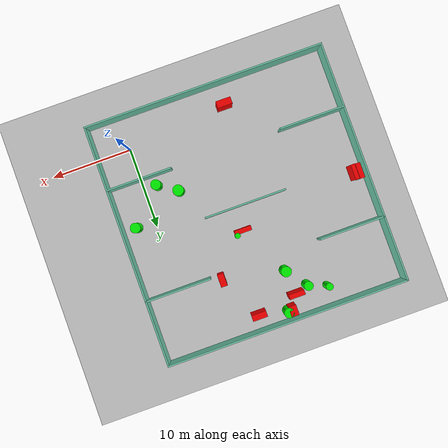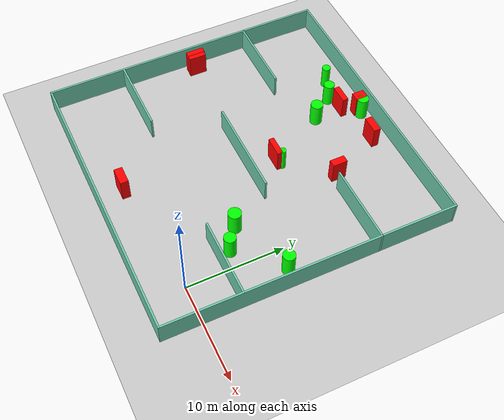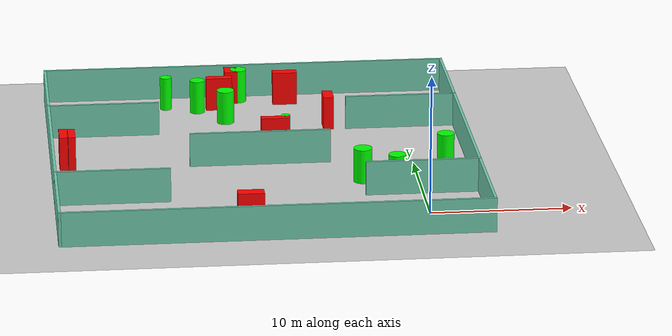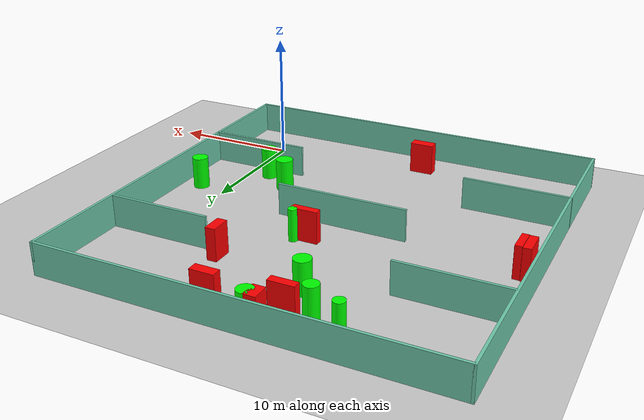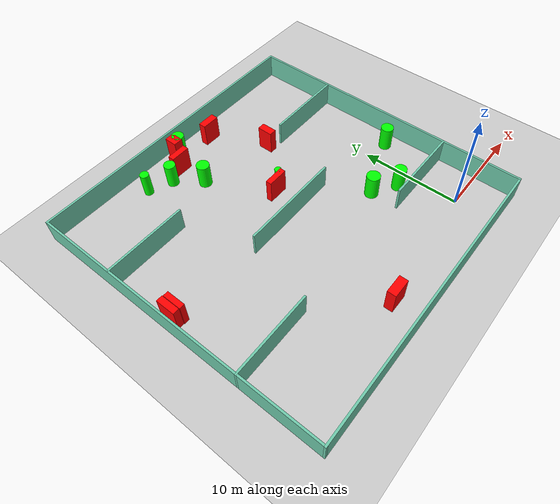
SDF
<sdf version="1.7">
 <world name="default">
  <light name="sun" type="directional">
   <pose>0 0 10 0 -0 0</pose>
   <diffuse>0.8 0.8 0.8 1</diffuse>
   <specular>0.2 0.2 0.2 1</specular>
   <attenuation>
    <range>1000</range>
    <constant>0.9</constant>
    <linear>0.01</linear>
    <quadratic>0.001</quadratic>
   </attenuation>
   <direction>-0.5 0.1 -0.9</direction>
   <spot><inner_angle>0</inner_angle><outer_angle>0</outer_angle><falloff>0</falloff></spot>
  </light>
  <model name="ground_plane">
   <static>1</static>
   <link name="link">
    <collision name="collision">
     <geometry><plane><normal>0 0 1</normal><size>100 100</size></plane></geometry>
     <surface>
      <contact><collide_bitmask>65535</collide_bitmask></contact>
      <friction><ode><mu>100</mu><mu2>50</mu2></ode></friction>
     </surface>
    </collision>
    <visual name="visual">
     <cast_shadows>0</cast_shadows>
     <geometry><plane><normal>0 0 1</normal><size>100 100</size></plane></geometry>
     <material>
      <script><uri>file://media/materials/scripts/gazebo.material</uri><name>Gazebo/Grey</name></script>
     </material>
    </visual>
   </link>
  </model>
  <gravity>0 0 -9.8</gravity>
  <magnetic_field>6e-06 2.3e-05 -4.2e-05</magnetic_field>
  <atmosphere type="adiabatic"/>
  <physics type="ode">
   <max_step_size>0.001</max_step_size>
   <real_time_factor>1</real_time_factor>
   <real_time_update_rate>1000</real_time_update_rate>
  </physics>
  <scene><ambient>0.4 0.4 0.4 1</ambient><background>0.7 0.7 0.7 1</background><shadows>1</shadows></scene>
  <spherical_coordinates>
   <surface_model>EARTH_WGS84</surface_model>
   <latitude_deg>0</latitude_deg>
   <longitude_deg>0</longitude_deg>
   <elevation>0</elevation>
   <heading_deg>0</heading_deg>
  </spherical_coordinates>
  <model name="my_base_walls">
   <link name="Wall_10">
    <collision name="Wall_10_Collision">
     <geometry><box><size>8.2 0.2 2.5</size></box></geometry>
     <pose>0 0 1.25 0 -0 0</pose>
    </collision>
    <visual name="Wall_10_Visual">
     <pose>0 0 1.25 0 -0 0</pose>
     <geometry><box><size>8.2 0.2 2.5</size></box></geometry>
     <material>
      <script><uri>file://media/materials/scripts/gazebo.material</uri><name>Gazebo/Grey</name></script>
      <ambient>0.435294 0.796078 0.67451 1</ambient>
     </material>
     <meta><layer>0</layer></meta>
    </visual>
    <pose>-11 -7 0 0 -0 0</pose>
   </link>
   <link name="Wall_12">
    <collision name="Wall_12_Collision">
     <geometry><box><size>8.2 0.2 2.5</size></box></geometry>
     <pose>0 0 1.25 0 -0 0</pose>
    </collision>
    <visual name="Wall_12_Visual">
     <pose>0 0 1.25 0 -0 0</pose>
     <geometry><box><size>8.2 0.2 2.5</size></box></geometry>
     <material>
      <script><uri>file://media/materials/scripts/gazebo.material</uri><name>Gazebo/Grey</name></script>
      <ambient>0.435294 0.796078 0.67451 1</ambient>
     </material>
     <meta><layer>0</layer></meta>
    </visual>
    <pose>-11 7 0 0 -0 0</pose>
   </link>
   <link name="Wall_14">
    <collision name="Wall_14_Collision">
     <geometry><box><size>8.2 0.2 2.5</size></box></geometry>
     <pose>0 0 1.25 0 -0 0</pose>
    </collision>
    <visual name="Wall_14_Visual">
     <pose>0 0 1.25 0 -0 0</pose>
     <geometry><box><size>8.2 0.2 2.5</size></box></geometry>
     <material>
      <script><uri>file://media/materials/scripts/gazebo.material</uri><name>Gazebo/Grey</name></script>
      <ambient>0.435294 0.796078 0.67451 1</ambient>
     </material>
     <meta><layer>0</layer></meta>
    </visual>
    <pose>11 7 0 0 -0 3.14159</pose>
   </link>
   <link name="Wall_16">
    <collision name="Wall_16_Collision">
     <geometry><box><size>10.2 0.2 2.5</size></box></geometry>
     <pose>0 0 1.25 0 -0 0</pose>
    </collision>
    <visual name="Wall_16_Visual">
     <pose>0 0 1.25 0 -0 0</pose>
     <geometry><box><size>10.2 0.2 2.5</size></box></geometry>
     <material>
      <script><uri>file://media/materials/scripts/gazebo.material</uri><name>Gazebo/Grey</name></script>
      <ambient>0.435294 0.796078 0.67451 1</ambient>
     </material>
     <meta><layer>0</layer></meta>
    </visual>
    <pose>0 0 0 0 -0 3.14159</pose>
   </link>
   <link name="Wall_2">
    <collision name="Wall_2_Collision">
     <geometry><box><size>30.2 0.2 2.5</size></box></geometry>
     <pose>0 0 1.25 0 -0 0</pose>
    </collision>
    <visual name="Wall_2_Visual">
     <pose>0 0 1.25 0 -0 0</pose>
     <geometry><box><size>30.2 0.2 2.5</size></box></geometry>
     <material>
      <script><uri>file://media/materials/scripts/gazebo.material</uri><name>Gazebo/Grey</name></script>
      <ambient>0.435294 0.796078 0.67451 1</ambient>
     </material>
     <meta><layer>0</layer></meta>
    </visual>
    <pose>0 -15 0 0 -0 3.14159</pose>
   </link>
   <link name="Wall_3">
    <collision name="Wall_3_Collision">
     <geometry><box><size>30.2 0.2 2.5</size></box></geometry>
     <pose>0 0 1.25 0 -0 0</pose>
    </collision>
    <visual name="Wall_3_Visual">
     <pose>0 0 1.25 0 -0 0</pose>
     <geometry><box><size>30.2 0.2 2.5</size></box></geometry>
     <material>
      <script><uri>file://media/materials/scripts/gazebo.material</uri><name>Gazebo/Grey</name></script>
      <ambient>0.435294 0.796078 0.67451 1</ambient>
     </material>
     <meta><layer>0</layer></meta>
    </visual>
    <pose>-15 0 0 0 -0 1.5708</pose>
   </link>
   <link name="Wall_4">
    <collision name="Wall_4_Collision">
     <geometry><box><size>30.2 0.2 2.5</size></box></geometry>
     <pose>0 0 1.25 0 -0 0</pose>
    </collision>
    <visual name="Wall_4_Visual">
     <pose>0 0 1.25 0 -0 0</pose>
     <geometry><box><size>30.2 0.2 2.5</size></box></geometry>
     <material>
      <script><uri>file://media/materials/scripts/gazebo.material</uri><name>Gazebo/Grey</name></script>
      <ambient>0.435294 0.796078 0.67451 1</ambient>
     </material>
     <meta><layer>0</layer></meta>
    </visual>
    <pose>0 15 0 0 -0 0</pose>
   </link>
   <link name="Wall_6">
    <collision name="Wall_6_Collision">
     <geometry><box><size>30.2 0.2 2.5</size></box></geometry>
     <pose>0 0 1.25 0 -0 0</pose>
    </collision>
    <visual name="Wall_6_Visual">
     <pose>0 0 1.25 0 -0 0</pose>
     <geometry><box><size>30.2 0.2 2.5</size></box></geometry>
     <material>
      <script><uri>file://media/materials/scripts/gazebo.material</uri><name>Gazebo/Grey</name></script>
      <ambient>0.435294 0.796078 0.67451 1</ambient>
     </material>
     <meta><layer>0</layer></meta>
    </visual>
    <pose>15 0 0 0 -0 1.5708</pose>
   </link>
   <link name="Wall_8">
    <collision name="Wall_8_Collision">
     <geometry><box><size>8.2 0.2 2.5</size></box></geometry>
     <pose>0 0 1.25 0 -0 0</pose>
    </collision>
    <visual name="Wall_8_Visual">
     <pose>0 0 1.25 0 -0 0</pose>
     <geometry><box><size>8.2 0.2 2.5</size></box></geometry>
     <material>
      <script><uri>file://media/materials/scripts/gazebo.material</uri><name>Gazebo/Grey</name></script>
      <ambient>0.435294 0.796078 0.67451 1</ambient>
     </material>
     <meta><layer>0</layer></meta>
    </visual>
    <pose>11 -7 0 0 -0 3.14159</pose>
   </link>
   <static>1</static>
   <pose>-11 11 0 0 -0 0</pose>
  </model>
  <model name="cylinder1">
   <static>1</static>
   <link name="link">
    <inertial>
     <mass>1</mass>
     <inertia><ixx>0.5</ixx><ixy>0</ixy><ixz>0</ixz><iyy>0.5</iyy><iyz>0</iyz><izz>1</izz></inertia>
    </inertial>
    <collision name="collision">
     <geometry><cylinder><radius>0.556122124614155</radius><length>2.5</length></cylinder></geometry>
    </collision>
    <visual name="visual">
     <geometry><cylinder><radius>0.556122124614155</radius><length>2.5</length></cylinder></geometry>
     <material>
      <ambient>0 1 0 1</ambient>
      <diffuse>0 1 0 1</diffuse>
      <specular>0.1 0.1 0.1 1</specular>
      <emissive>0 0 0 0</emissive>
     </material>
    </visual>
   </link>
   <pose>-14.742783288029546 22.694048549079113 1.25 0 0 0</pose>
  </model>
  <model name="cylinder2">
   <static>1</static>
   <link name="link">
    <inertial>
     <mass>1</mass>
     <inertia><ixx>0.5</ixx><ixy>0</ixy><ixz>0</ixz><iyy>0.5</iyy><iyz>0</iyz><izz>1</izz></inertia>
    </inertial>
    <collision name="collision">
     <geometry><cylinder><radius>0.6703374828728006</radius><length>2.5</length></cylinder></geometry>
    </collision>
    <visual name="visual">
     <geometry><cylinder><radius>0.6703374828728006</radius><length>2.5</length></cylinder></geometry>
     <material>
      <ambient>0 1 0 1</ambient>
      <diffuse>0 1 0 1</diffuse>
      <specular>0.1 0.1 0.1 1</specular>
      <emissive>0 0 0 0</emissive>
     </material>
    </visual>
   </link>
   <pose>-4.007905451873974 6.815473270482087 1.25 0 0 0</pose>
  </model>
  <model name="cylinder3">
   <static>1</static>
   <link name="link">
    <inertial>
     <mass>1</mass>
     <inertia><ixx>0.5</ixx><ixy>0</ixy><ixz>0</ixz><iyy>0.5</iyy><iyz>0</iyz><izz>1</izz></inertia>
    </inertial>
    <collision name="collision">
     <geometry><cylinder><radius>0.33765850103781386</radius><length>2.5</length></cylinder></geometry>
    </collision>
    <visual name="visual">
     <geometry><cylinder><radius>0.33765850103781386</radius><length>2.5</length></cylinder></geometry>
     <material>
      <ambient>0 1 0 1</ambient>
      <diffuse>0 1 0 1</diffuse>
      <specular>0.1 0.1 0.1 1</specular>
      <emissive>0 0 0 0</emissive>
     </material>
    </visual>
   </link>
   <pose>-8.857349576843216 14.297837706328394 1.25 0 0 0</pose>
  </model>
  <model name="cylinder4">
   <static>1</static>
   <link name="link">
    <inertial>
     <mass>1</mass>
     <inertia><ixx>0.5</ixx><ixy>0</ixy><ixz>0</ixz><iyy>0.5</iyy><iyz>0</iyz><izz>1</izz></inertia>
    </inertial>
    <collision name="collision">
     <geometry><cylinder><radius>0.6119587763083241</radius><length>2.5</length></cylinder></geometry>
    </collision>
    <visual name="visual">
     <geometry><cylinder><radius>0.6119587763083241</radius><length>2.5</length></cylinder></geometry>
     <material>
      <ambient>0 1 0 1</ambient>
      <diffuse>0 1 0 1</diffuse>
      <specular>0.1 0.1 0.1 1</specular>
      <emissive>0 0 0 0</emissive>
     </material>
    </visual>
   </link>
   <pose>-1.7225922360912413 5.29307022920827 1.25 0 0 0</pose>
  </model>
  <model name="cylinder5">
   <static>1</static>
   <link name="link">
    <inertial>
     <mass>1</mass>
     <inertia><ixx>0.5</ixx><ixy>0</ixy><ixz>0</ixz><iyy>0.5</iyy><iyz>0</iyz><izz>1</izz></inertia>
    </inertial>
    <collision name="collision">
     <geometry><cylinder><radius>0.6007415918461918</radius><length>2.5</length></cylinder></geometry>
    </collision>
    <visual name="visual">
     <geometry><cylinder><radius>0.6007415918461918</radius><length>2.5</length></cylinder></geometry>
     <material>
      <ambient>0 1 0 1</ambient>
      <diffuse>0 1 0 1</diffuse>
      <specular>0.1 0.1 0.1 1</specular>
      <emissive>0 0 0 0</emissive>
     </material>
    </visual>
   </link>
   <pose>-11.517628947219062 24.920722663840294 1.25 0 0 0</pose>
  </model>
  <model name="cylinder6">
   <static>1</static>
   <link name="link">
    <inertial>
     <mass>1</mass>
     <inertia><ixx>0.5</ixx><ixy>0</ixy><ixz>0</ixz><iyy>0.5</iyy><iyz>0</iyz><izz>1</izz></inertia>
    </inertial>
    <collision name="collision">
     <geometry><cylinder><radius>0.6391881609787226</radius><length>2.5</length></cylinder></geometry>
    </collision>
    <visual name="visual">
     <geometry><cylinder><radius>0.6391881609787226</radius><length>2.5</length></cylinder></geometry>
     <material>
      <ambient>0 1 0 1</ambient>
      <diffuse>0 1 0 1</diffuse>
      <specular>0.1 0.1 0.1 1</specular>
      <emissive>0 0 0 0</emissive>
     </material>
    </visual>
   </link>
   <pose>-12.815945903023092 20.216579862999197 1.25 0 0 0</pose>
  </model>
  <model name="cylinder7">
   <static>1</static>
   <link name="link">
    <inertial>
     <mass>1</mass>
     <inertia><ixx>0.5</ixx><ixy>0</ixy><ixz>0</ixz><iyy>0.5</iyy><iyz>0</iyz><izz>1</izz></inertia>
    </inertial>
    <collision name="collision">
     <geometry><cylinder><radius>0.43534264379098775</radius><length>2.5</length></cylinder></geometry>
    </collision>
    <visual name="visual">
     <geometry><cylinder><radius>0.43534264379098775</radius><length>2.5</length></cylinder></geometry>
     <material>
      <ambient>0 1 0 1</ambient>
      <diffuse>0 1 0 1</diffuse>
      <specular>0.1 0.1 0.1 1</specular>
      <emissive>0 0 0 0</emissive>
     </material>
    </visual>
   </link>
   <pose>-17.04880219656082 23.611544801081347 1.25 0 0 0</pose>
  </model>
  <model name="cylinder8">
   <static>1</static>
   <link name="link">
    <inertial>
     <mass>1</mass>
     <inertia><ixx>0.5</ixx><ixy>0</ixy><ixz>0</ixz><iyy>0.5</iyy><iyz>0</iyz><izz>1</izz></inertia>
    </inertial>
    <collision name="collision">
     <geometry><cylinder><radius>0.6206087163455815</radius><length>2.5</length></cylinder></geometry>
    </collision>
    <visual name="visual">
     <geometry><cylinder><radius>0.6206087163455815</radius><length>2.5</length></cylinder></geometry>
     <material>
      <ambient>0 1 0 1</ambient>
      <diffuse>0 1 0 1</diffuse>
      <specular>0.1 0.1 0.1 1</specular>
      <emissive>0 0 0 0</emissive>
     </material>
    </visual>
   </link>
   <pose>2.2695303223295618 9.336822435333046 1.25 0 0 0</pose>
  </model>
  <model name="box1">
   <static>1</static>
   <link name="link">
    <inertial>
     <mass>1</mass>
     <inertia><ixx>0.083</ixx><ixy>0</ixy><ixz>0</ixz><iyy>0.083</iyy><iyz>0</iyz><izz>0.083</izz></inertia>
    </inertial>
    <collision name="collision">
     <geometry><box><size>0.6058887339972637 1.8960172157842572 2.5</size></box></geometry>
    </collision>
    <visual name="visual">
     <geometry><box><size>0.6058887339972637 1.8960172157842572 2.5</size></box></geometry>
     <material>
      <ambient>1 0 0 1</ambient>
      <diffuse>1 0 0 1</diffuse>
      <specular>0.1 0.1 0.1 1</specular>
      <emissive>0 0 0 0</emissive>
     </material>
    </visual>
    <sensor name="my_contact" type="contact">
     <contact><collision>box_collision</collision><topic>__default_topic__</topic></contact>
    </sensor>
   </link>
   <pose>-25.154974816612977 11.89559091767302 1.25 0 0 0</pose>
  </model>
  <model name="box2">
   <static>1</static>
   <link name="link">
    <inertial>
     <mass>1</mass>
     <inertia><ixx>0.083</ixx><ixy>0</ixy><ixz>0</ixz><iyy>0.083</iyy><iyz>0</iyz><izz>0.083</izz></inertia>
    </inertial>
    <collision name="collision">
     <geometry><box><size>0.5214342772216674 1.8628220299374019 2.5</size></box></geometry>
    </collision>
    <visual name="visual">
     <geometry><box><size>0.5214342772216674 1.8628220299374019 2.5</size></box></geometry>
     <material>
      <ambient>1 0 0 1</ambient>
      <diffuse>1 0 0 1</diffuse>
      <specular>0.1 0.1 0.1 1</specular>
      <emissive>0 0 0 0</emissive>
     </material>
    </visual>
    <sensor name="my_contact" type="contact">
     <contact><collision>box_collision</collision><topic>__default_topic__</topic></contact>
    </sensor>
   </link>
   <pose>-24.562386060245483 11.834784637926994 1.25 0 0 0</pose>
  </model>
  <model name="box3">
   <static>1</static>
   <link name="link">
    <inertial>
     <mass>1</mass>
     <inertia><ixx>0.083</ixx><ixy>0</ixy><ixz>0</ixz><iyy>0.083</iyy><iyz>0</iyz><izz>0.083</izz></inertia>
    </inertial>
    <collision name="collision">
     <geometry><box><size>1.9397953673509214 0.6166513461832762 2.5</size></box></geometry>
    </collision>
    <visual name="visual">
     <geometry><box><size>1.9397953673509214 0.6166513461832762 2.5</size></box></geometry>
     <material>
      <ambient>1 0 0 1</ambient>
      <diffuse>1 0 0 1</diffuse>
      <specular>0.1 0.1 0.1 1</specular>
      <emissive>0 0 0 0</emissive>
     </material>
    </visual>
    <sensor name="my_contact" type="contact">
     <contact><collision>box_collision</collision><topic>__default_topic__</topic></contact>
    </sensor>
   </link>
   <pose>-13.095454237509768 23.187284152642505 1.25 0 0 0</pose>
  </model>
  <model name="box4">
   <static>1</static>
   <link name="link">
    <inertial>
     <mass>1</mass>
     <inertia><ixx>0.083</ixx><ixy>0</ixy><ixz>0</ixz><iyy>0.083</iyy><iyz>0</iyz><izz>0.083</izz></inertia>
    </inertial>
    <collision name="collision">
     <geometry><box><size>2.0765070698249417 0.5706125237657418 2.5</size></box></geometry>
    </collision>
    <visual name="visual">
     <geometry><box><size>2.0765070698249417 0.5706125237657418 2.5</size></box></geometry>
     <material>
      <ambient>1 0 0 1</ambient>
      <diffuse>1 0 0 1</diffuse>
      <specular>0.1 0.1 0.1 1</specular>
      <emissive>0 0 0 0</emissive>
     </material>
    </visual>
    <sensor name="my_contact" type="contact">
     <contact><collision>box_collision</collision><topic>__default_topic__</topic></contact>
    </sensor>
   </link>
   <pose>-9.652457231849912 13.905499281050655 1.25 0 0 0</pose>
  </model>
  <model name="box5">
   <static>1</static>
   <link name="link">
    <inertial>
     <mass>1</mass>
     <inertia><ixx>0.083</ixx><ixy>0</ixy><ixz>0</ixz><iyy>0.083</iyy><iyz>0</iyz><izz>0.083</izz></inertia>
    </inertial>
    <collision name="collision">
     <geometry><box><size>1.8142795359024744 0.7344802194313255 2.5</size></box></geometry>
    </collision>
    <visual name="visual">
     <geometry><box><size>1.8142795359024744 0.7344802194313255 2.5</size></box></geometry>
     <material>
      <ambient>1 0 0 1</ambient>
      <diffuse>1 0 0 1</diffuse>
      <specular>0.1 0.1 0.1 1</specular>
      <emissive>0 0 0 0</emissive>
     </material>
    </visual>
    <sensor name="my_contact" type="contact">
     <contact><collision>box_collision</collision><topic>__default_topic__</topic></contact>
    </sensor>
   </link>
   <pose>-8.077178060771377 24.0678094583393 1.25 0 0 0</pose>
  </model>
  <model name="box6">
   <static>1</static>
   <link name="link">
    <inertial>
     <mass>1</mass>
     <inertia><ixx>0.083</ixx><ixy>0</ixy><ixz>0</ixz><iyy>0.083</iyy><iyz>0</iyz><izz>0.083</izz></inertia>
    </inertial>
    <collision name="collision">
     <geometry><box><size>1.864234952234092 0.8510719047700958 2.5</size></box></geometry>
    </collision>
    <visual name="visual">
     <geometry><box><size>1.864234952234092 0.8510719047700958 2.5</size></box></geometry>
     <material>
      <ambient>1 0 0 1</ambient>
      <diffuse>1 0 0 1</diffuse>
      <specular>0.1 0.1 0.1 1</specular>
      <emissive>0 0 0 0</emissive>
     </material>
    </visual>
    <sensor name="my_contact" type="contact">
     <contact><collision>box_collision</collision><topic>__default_topic__</topic></contact>
    </sensor>
   </link>
   <pose>-12.67163215172901 -1.2209265782748315 1.25 0 0 0</pose>
  </model>
  <model name="box7">
   <static>1</static>
   <link name="link">
    <inertial>
     <mass>1</mass>
     <inertia><ixx>0.083</ixx><ixy>0</ixy><ixz>0</ixz><iyy>0.083</iyy><iyz>0</iyz><izz>0.083</izz></inertia>
    </inertial>
    <collision name="collision">
     <geometry><box><size>0.9461690029885153 1.262536894604109 2.5</size></box></geometry>
    </collision>
    <visual name="visual">
     <geometry><box><size>0.9461690029885153 1.262536894604109 2.5</size></box></geometry>
     <material>
      <ambient>1 0 0 1</ambient>
      <diffuse>1 0 0 1</diffuse>
      <specular>0.1 0.1 0.1 1</specular>
      <emissive>0 0 0 0</emissive>
     </material>
    </visual>
    <sensor name="my_contact" type="contact">
     <contact><collision>box_collision</collision><topic>__default_topic__</topic></contact>
    </sensor>
   </link>
   <pose>-12.091081102964525 24.85696959557285 1.25 0 0 0</pose>
  </model>
  <model name="box8">
   <static>1</static>
   <link name="link">
    <inertial>
     <mass>1</mass>
     <inertia><ixx>0.083</ixx><ixy>0</ixy><ixz>0</ixz><iyy>0.083</iyy><iyz>0</iyz><izz>0.083</izz></inertia>
    </inertial>
    <collision name="collision">
     <geometry><box><size>0.7661500262020695 1.5385690891327717 2.5</size></box></geometry>
    </collision>
    <visual name="visual">
     <geometry><box><size>0.7661500262020695 1.5385690891327717 2.5</size></box></geometry>
     <material>
      <ambient>1 0 0 1</ambient>
      <diffuse>1 0 0 1</diffuse>
      <specular>0.1 0.1 0.1 1</specular>
      <emissive>0 0 0 0</emissive>
     </material>
    </visual>
    <sensor name="my_contact" type="contact">
     <contact><collision>box_collision</collision><topic>__default_topic__</topic></contact>
    </sensor>
   </link>
   <pose>-5.347679231571927 18.620077422273216 1.25 0 0 0</pose>
  </model>
 </world>
</sdf>
